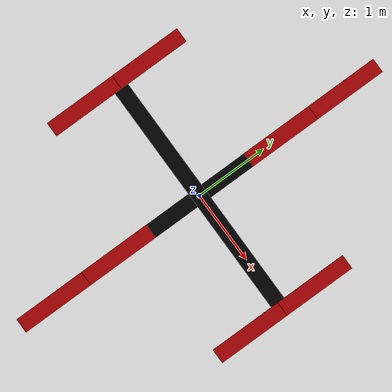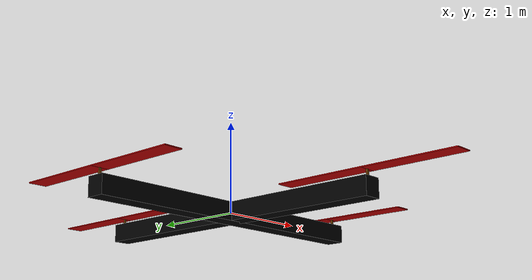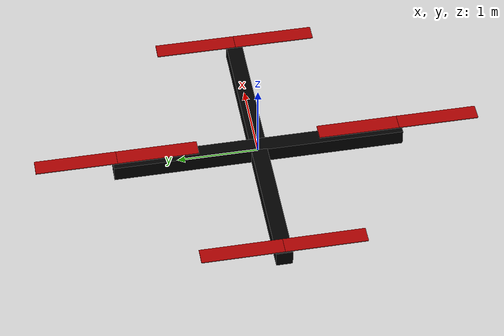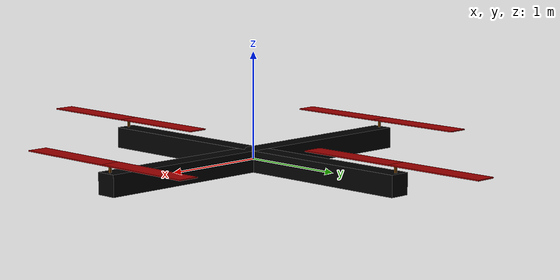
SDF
<?xml version='1.0'?>
<sdf version='1.6'>
  <model name='drone500'>
    <link name='body_1'>
      <pose frame=''>0 0 0 0 -0 0</pose>
      <inertial>
        <pose frame=''>0 0 0 0 -0 0</pose>
        <inertia>
          <ixx>1.8</ixx>
          <ixy>0</ixy>
          <ixz>0</ixz>
          <iyy>10.8</iyy>
          <iyz>0</iyz>
          <izz>10.8</izz>
        </inertia>
        <mass>10</mass>
      </inertial>
      <sensor name='imu_sensor' type='imu'>
        <always_on>1</always_on>
        <update_rate>1000</update_rate>
        <imu>
          <angular_velocity>
            <x>
              <noise type='gaussian'>
                <mean>0</mean>
                <stddev>0.0002</stddev>
                <bias_mean>7.5e-06</bias_mean>
                <bias_stddev>8e-07</bias_stddev>
              </noise>
            </x>
            <y>
              <noise type='gaussian'>
                <mean>0</mean>
                <stddev>0.0002</stddev>
                <bias_mean>7.5e-06</bias_mean>
                <bias_stddev>8e-07</bias_stddev>
              </noise>
            </y>
            <z>
              <noise type='gaussian'>
                <mean>0</mean>
                <stddev>0.0002</stddev>
                <bias_mean>7.5e-06</bias_mean>
                <bias_stddev>8e-07</bias_stddev>
              </noise>
            </z>
          </angular_velocity>
          <linear_acceleration>
            <x>
              <noise type='gaussian'>
                <mean>0</mean>
                <stddev>0.017</stddev>
                <bias_mean>0.1</bias_mean>
                <bias_stddev>0.001</bias_stddev>
              </noise>
            </x>
            <y>
              <noise type='gaussian'>
                <mean>0</mean>
                <stddev>0.017</stddev>
                <bias_mean>0.1</bias_mean>
                <bias_stddev>0.001</bias_stddev>
              </noise>
            </y>
            <z>
              <noise type='gaussian'>
                <mean>0</mean>
                <stddev>0.017</stddev>
                <bias_mean>0.1</bias_mean>
                <bias_stddev>0.001</bias_stddev>
              </noise>
            </z>
          </linear_acceleration>
        </imu>
        <pose frame=''>0 0 0 0 -0 0</pose>
      </sensor>
      <self_collide>0</self_collide>
      <enable_wind>0</enable_wind>
      <kinematic>0</kinematic>
      <gravity>1</gravity>
      <visual name='visual'>
        <geometry>

          <box>
            <size>3.6 0.2 0.2</size>
          </box>
        </geometry>
        <material>
          <ambient>0 0 0 1</ambient>
          <diffuse>0 0 0 1</diffuse>
          <script>
            <name>ModelPreview_12::body_1::visual_MATERIAL_</name>
            <uri>__default__</uri>
          </script>
          <shader type='vertex'>
            <normal_map>__default__</normal_map>
          </shader>
          <specular>0 0 0 1</specular>
          <emissive>0 0 0 1</emissive>
        </material>
        <pose frame=''>0 0 0 0 -0 0</pose>
        <transparency>0</transparency>
        <cast_shadows>1</cast_shadows>
      </visual>
      <collision name='collision'>
        <laser_retro>0</laser_retro>
        <max_contacts>10</max_contacts>
        <pose frame=''>0 0 0 0 -0 0</pose>
        <geometry>
          <box>
            <size>3.6 0.2 0.2</size>
          </box>
        </geometry>
        <surface>
          <friction>
            <ode>
              <mu>0.1</mu>
              <mu2>0.1</mu2>
              <fdir1>0 0 0</fdir1>
              <slip1>0</slip1>
              <slip2>0</slip2>
            </ode>
            <torsional>
              <coefficient>1</coefficient>
              <patch_radius>0</patch_radius>
              <surface_radius>0</surface_radius>
              <use_patch_radius>1</use_patch_radius>
              <ode>
                <slip>0</slip>
              </ode>
            </torsional>
          </friction>
          <bounce>
            <restitution_coefficient>0</restitution_coefficient>
            <threshold>1e+06</threshold>
          </bounce>
          <contact>
            <collide_without_contact>0</collide_without_contact>
            <collide_without_contact_bitmask>1</collide_without_contact_bitmask>
            <collide_bitmask>1</collide_bitmask>
            <ode>
              <soft_cfm>0</soft_cfm>
              <soft_erp>0.2</soft_erp>
              <kp>1e+13</kp>
              <kd>1</kd>
              <max_vel>0.01</max_vel>
              <min_depth>0</min_depth>
            </ode>
            <bullet>
              <split_impulse>1</split_impulse>
              <split_impulse_penetration_threshold>-0.01</split_impulse_penetration_threshold>
              <soft_cfm>0</soft_cfm>
              <soft_erp>0.2</soft_erp>
              <kp>1e+13</kp>
              <kd>1</kd>
            </bullet>
          </contact>
        </surface>
      </collision>
    </link>
    <link name='blade_1'>
      <pose frame=''>-1.75 0 0.18 0 -0 0</pose>
      <inertial>
        <pose frame=''>0 0.25 0 0 -0 0</pose>
        <inertia>
          <ixx>4.65e-05</ixx>
          <ixy>0</ixy>
          <ixz>0</ixz>
          <iyy>6e-07</iyy>
          <iyz>0</iyz>
          <izz>4.7e-05</izz>
        </inertia>
        <mass>0.01</mass>
      </inertial>
      <self_collide>0</self_collide>
      <enable_wind>0</enable_wind>
      <kinematic>0</kinematic>
      <gravity>1</gravity>
      <visual name='visual'>
        <pose frame=''>0 0.5 0 0 -0 0</pose>
        <geometry>
          <box>
            <size>0.2 1 0.01</size>
          </box>
        </geometry>
        <material>
          <ambient>0.667 0 0 1</ambient>
          <diffuse>0.667 0 0 1</diffuse>
          <script>
            <name>ModelPreview_12::blade_1::visual_MATERIAL_</name>
            <uri>__default__</uri>
          </script>
          <shader type='vertex'>
            <normal_map>__default__</normal_map>
          </shader>
          <specular>0.667 0 0 1</specular>
          <emissive>0 0 0 1</emissive>
        </material>
        <transparency>0</transparency>
        <cast_shadows>1</cast_shadows>
      </visual>
      <collision name='collision'>
        <laser_retro>0</laser_retro>
        <max_contacts>10</max_contacts>
        <pose frame=''>0 0.5 0 0 -0 0</pose>
        <geometry>
          <box>
            <size>0.2 1 0.01</size>
          </box>
        </geometry>
        <surface>
          <friction>
            <ode>
              <mu>1</mu>
              <mu2>1</mu2>
              <fdir1>0 0 0</fdir1>
              <slip1>0</slip1>
              <slip2>0</slip2>
            </ode>
            <torsional>
              <coefficient>1</coefficient>
              <patch_radius>0</patch_radius>
              <surface_radius>0</surface_radius>
              <use_patch_radius>1</use_patch_radius>
              <ode>
                <slip>0</slip>
              </ode>
            </torsional>
          </friction>
          <bounce>
            <restitution_coefficient>0</restitution_coefficient>
            <threshold>1e+06</threshold>
          </bounce>
          <contact>
            <collide_without_contact>0</collide_without_contact>
            <collide_without_contact_bitmask>1</collide_without_contact_bitmask>
            <collide_bitmask>1</collide_bitmask>
            <ode>
              <soft_cfm>0</soft_cfm>
              <soft_erp>0.2</soft_erp>
              <kp>1e+13</kp>
              <kd>1</kd>
              <max_vel>0.01</max_vel>
              <min_depth>0</min_depth>
            </ode>
            <bullet>
              <split_impulse>1</split_impulse>
              <split_impulse_penetration_threshold>-0.01</split_impulse_penetration_threshold>
              <soft_cfm>0</soft_cfm>
              <soft_erp>0.2</soft_erp>
              <kp>1e+13</kp>
              <kd>1</kd>
            </bullet>
          </contact>
        </surface>
      </collision>
    </link>
    <link name='blade_2'>
      <pose frame=''>-1.75 0 0.18 0 0 -3.14159</pose>
      <inertial>
        <pose frame=''>0 0.25 0 0 -0 0</pose>
        <inertia>
          <ixx>4.65e-05</ixx>
          <ixy>0</ixy>
          <ixz>0</ixz>
          <iyy>6e-07</iyy>
          <iyz>0</iyz>
          <izz>4.7e-05</izz>
        </inertia>
        <mass>0.01</mass>
      </inertial>
      <self_collide>0</self_collide>
      <enable_wind>0</enable_wind>
      <kinematic>0</kinematic>
      <gravity>1</gravity>
      <visual name='visual'>
        <pose frame=''>0 0.5 0 0 -0 0</pose>
        <geometry>
          <box>
            <size>0.2 1 0.01</size>
          </box>
        </geometry>
        <material>
          <ambient>0.667 0 0 1</ambient>
          <diffuse>0.667 0 0 1</diffuse>
          <script>
            <name>ModelPreview_12::blade_2::visual_MATERIAL_</name>
            <uri>__default__</uri>
          </script>
          <shader type='vertex'>
            <normal_map>__default__</normal_map>
          </shader>
          <specular>0.667 0 0 1</specular>
          <emissive>0 0 0 1</emissive>
        </material>
        <transparency>0</transparency>
        <cast_shadows>1</cast_shadows>
      </visual>
      <collision name='collision'>
        <laser_retro>0</laser_retro>
        <max_contacts>10</max_contacts>
        <pose frame=''>0 0.5 0 0 -0 0</pose>
        <geometry>
          <box>
            <size>0.2 1 0.01</size>
          </box>
        </geometry>
        <surface>
          <friction>
            <ode>
              <mu>1</mu>
              <mu2>1</mu2>
              <fdir1>0 0 0</fdir1>
              <slip1>0</slip1>
              <slip2>0</slip2>
            </ode>
            <torsional>
              <coefficient>1</coefficient>
              <patch_radius>0</patch_radius>
              <surface_radius>0</surface_radius>
              <use_patch_radius>1</use_patch_radius>
              <ode>
                <slip>0</slip>
              </ode>
            </torsional>
          </friction>
          <bounce>
            <restitution_coefficient>0</restitution_coefficient>
            <threshold>1e+06</threshold>
          </bounce>
          <contact>
            <collide_without_contact>0</collide_without_contact>
            <collide_without_contact_bitmask>1</collide_without_contact_bitmask>
            <collide_bitmask>1</collide_bitmask>
            <ode>
              <soft_cfm>0</soft_cfm>
              <soft_erp>0.2</soft_erp>
              <kp>1e+13</kp>
              <kd>1</kd>
              <max_vel>0.01</max_vel>
              <min_depth>0</min_depth>
            </ode>
            <bullet>
              <split_impulse>1</split_impulse>
              <split_impulse_penetration_threshold>-0.01</split_impulse_penetration_threshold>
              <soft_cfm>0</soft_cfm>
              <soft_erp>0.2</soft_erp>
              <kp>1e+13</kp>
              <kd>1</kd>
            </bullet>
          </contact>
        </surface>
      </collision>
    </link>
    <link name='blade_3'>
      <pose frame=''>1.75 0 0.18 0 -0 0</pose>
      <inertial>
        <pose frame=''>0 0.25 0 0 -0 0</pose>
        <inertia>
          <ixx>4.65e-05</ixx>
          <ixy>0</ixy>
          <ixz>0</ixz>
          <iyy>6e-07</iyy>
          <iyz>0</iyz>
          <izz>4.7e-05</izz>
        </inertia>
        <mass>0.01</mass>
      </inertial>
      <self_collide>0</self_collide>
      <enable_wind>0</enable_wind>
      <kinematic>0</kinematic>
      <gravity>1</gravity>
      <visual name='visual'>
        <pose frame=''>0 0.5 0 0 -0 0</pose>
        <geometry>
          <box>
            <size>0.2 1 0.01</size>
          </box>
        </geometry>
        <material>
          <ambient>0.667 0 0 1</ambient>
          <diffuse>0.667 0 0 1</diffuse>
          <script>
            <name>ModelPreview_12::blade_3::visual_MATERIAL_</name>
            <uri>__default__</uri>
          </script>
          <shader type='vertex'>
            <normal_map>__default__</normal_map>
          </shader>
          <specular>0.667 0 0 1</specular>
          <emissive>0 0 0 1</emissive>
        </material>
        <transparency>0</transparency>
        <cast_shadows>1</cast_shadows>
      </visual>
      <collision name='collision'>
        <laser_retro>0</laser_retro>
        <max_contacts>10</max_contacts>
        <pose frame=''>0 0.5 0 0 -0 0</pose>
        <geometry>
          <box>
            <size>0.2 1 0.01</size>
          </box>
        </geometry>
        <surface>
          <friction>
            <ode>
              <mu>1</mu>
              <mu2>1</mu2>
              <fdir1>0 0 0</fdir1>
              <slip1>0</slip1>
              <slip2>0</slip2>
            </ode>
            <torsional>
              <coefficient>1</coefficient>
              <patch_radius>0</patch_radius>
              <surface_radius>0</surface_radius>
              <use_patch_radius>1</use_patch_radius>
              <ode>
                <slip>0</slip>
              </ode>
            </torsional>
          </friction>
          <bounce>
            <restitution_coefficient>0</restitution_coefficient>
            <threshold>1e+06</threshold>
          </bounce>
          <contact>
            <collide_without_contact>0</collide_without_contact>
            <collide_without_contact_bitmask>1</collide_without_contact_bitmask>
            <collide_bitmask>1</collide_bitmask>
            <ode>
              <soft_cfm>0</soft_cfm>
              <soft_erp>0.2</soft_erp>
              <kp>1e+13</kp>
              <kd>1</kd>
              <max_vel>0.01</max_vel>
              <min_depth>0</min_depth>
            </ode>
            <bullet>
              <split_impulse>1</split_impulse>
              <split_impulse_penetration_threshold>-0.01</split_impulse_penetration_threshold>
              <soft_cfm>0</soft_cfm>
              <soft_erp>0.2</soft_erp>
              <kp>1e+13</kp>
              <kd>1</kd>
            </bullet>
          </contact>
        </surface>
      </collision>
    </link>
    <link name='blade_4'>
      <pose frame=''>1.75 0 0.18 0 0 -3.14159</pose>
      <inertial>
        <pose frame=''>0 0.25 0 0 -0 0</pose>
        <inertia>
          <ixx>4.65e-05</ixx>
          <ixy>0</ixy>
          <ixz>0</ixz>
          <iyy>6e-07</iyy>
          <iyz>0</iyz>
          <izz>4.7e-05</izz>
        </inertia>
        <mass>0.01</mass>
      </inertial>
      <self_collide>0</self_collide>
      <enable_wind>0</enable_wind>
      <kinematic>0</kinematic>
      <gravity>1</gravity>
      <visual name='visual'>
        <pose frame=''>0 0.5 0 0 -0 0</pose>
        <geometry>
          <box>
            <size>0.2 1 0.01</size>
          </box>
        </geometry>
        <material>
          <ambient>0.667 0 0 1</ambient>
          <diffuse>0.667 0 0 1</diffuse>
          <script>
            <name>ModelPreview_12::blade_4::visual_MATERIAL_</name>
            <uri>__default__</uri>
          </script>
          <shader type='vertex'>
            <normal_map>__default__</normal_map>
          </shader>
          <specular>0.667 0 0 1</specular>
          <emissive>0 0 0 1</emissive>
        </material>
        <transparency>0</transparency>
        <cast_shadows>1</cast_shadows>
      </visual>
      <collision name='collision'>
        <laser_retro>0</laser_retro>
        <max_contacts>10</max_contacts>
        <pose frame=''>0 0.5 0 0 -0 0</pose>
        <geometry>
          <box>
            <size>0.2 1 0.01</size>
          </box>
        </geometry>
        <surface>
          <friction>
            <ode>
              <mu>1</mu>
              <mu2>1</mu2>
              <fdir1>0 0 0</fdir1>
              <slip1>0</slip1>
              <slip2>0</slip2>
            </ode>
            <torsional>
              <coefficient>1</coefficient>
              <patch_radius>0</patch_radius>
              <surface_radius>0</surface_radius>
              <use_patch_radius>1</use_patch_radius>
              <ode>
                <slip>0</slip>
              </ode>
            </torsional>
          </friction>
          <bounce>
            <restitution_coefficient>0</restitution_coefficient>
            <threshold>1e+06</threshold>
          </bounce>
          <contact>
            <collide_without_contact>0</collide_without_contact>
            <collide_without_contact_bitmask>1</collide_without_contact_bitmask>
            <collide_bitmask>1</collide_bitmask>
            <ode>
              <soft_cfm>0</soft_cfm>
              <soft_erp>0.2</soft_erp>
              <kp>1e+13</kp>
              <kd>1</kd>
              <max_vel>0.01</max_vel>
              <min_depth>0</min_depth>
            </ode>
            <bullet>
              <split_impulse>1</split_impulse>
              <split_impulse_penetration_threshold>-0.01</split_impulse_penetration_threshold>
              <soft_cfm>0</soft_cfm>
              <soft_erp>0.2</soft_erp>
              <kp>1e+13</kp>
              <kd>1</kd>
            </bullet>
          </contact>
        </surface>
      </collision>
    </link>
    <link name='blade_5'>
      <pose frame=''>0 -1.75 0.18 0 -0 0</pose>
      <inertial>
        <pose frame=''>0 0.25 0 0 -0 0</pose>
        <inertia>
          <ixx>4.65e-05</ixx>
          <ixy>0</ixy>
          <ixz>0</ixz>
          <iyy>6e-07</iyy>
          <iyz>0</iyz>
          <izz>4.7e-05</izz>
        </inertia>
        <mass>0.01</mass>
      </inertial>
      <self_collide>0</self_collide>
      <enable_wind>0</enable_wind>
      <kinematic>0</kinematic>
      <gravity>1</gravity>
      <visual name='visual'>
        <pose frame=''>0 0.5 0 0 -0 0</pose>
        <geometry>
          <box>
            <size>0.2 1 0.01</size>
          </box>
        </geometry>
        <material>
          <ambient>0.667 0 0 1</ambient>
          <diffuse>0.667 0 0 1</diffuse>
          <script>
            <name>ModelPreview_12::blade_5::visual_MATERIAL_</name>
            <uri>__default__</uri>
          </script>
          <shader type='vertex'>
            <normal_map>__default__</normal_map>
          </shader>
          <specular>0.667 0 0 1</specular>
          <emissive>0.667 0 0 1</emissive>
        </material>
        <transparency>0</transparency>
        <cast_shadows>1</cast_shadows>
      </visual>
      <collision name='collision'>
        <laser_retro>0</laser_retro>
        <max_contacts>10</max_contacts>
        <pose frame=''>0 0.5 0 0 -0 0</pose>
        <geometry>
          <box>
            <size>0.2 1 0.01</size>
          </box>
        </geometry>
        <surface>
          <friction>
            <ode>
              <mu>1</mu>
              <mu2>1</mu2>
              <fdir1>0 0 0</fdir1>
              <slip1>0</slip1>
              <slip2>0</slip2>
            </ode>
            <torsional>
              <coefficient>1</coefficient>
              <patch_radius>0</patch_radius>
              <surface_radius>0</surface_radius>
              <use_patch_radius>1</use_patch_radius>
              <ode>
                <slip>0</slip>
              </ode>
            </torsional>
          </friction>
          <bounce>
            <restitution_coefficient>0</restitution_coefficient>
            <threshold>1e+06</threshold>
          </bounce>
          <contact>
            <collide_without_contact>0</collide_without_contact>
            <collide_without_contact_bitmask>1</collide_without_contact_bitmask>
            <collide_bitmask>1</collide_bitmask>
            <ode>
              <soft_cfm>0</soft_cfm>
              <soft_erp>0.2</soft_erp>
              <kp>1e+13</kp>
              <kd>1</kd>
              <max_vel>0.01</max_vel>
              <min_depth>0</min_depth>
            </ode>
            <bullet>
              <split_impulse>1</split_impulse>
              <split_impulse_penetration_threshold>-0.01</split_impulse_penetration_threshold>
              <soft_cfm>0</soft_cfm>
              <soft_erp>0.2</soft_erp>
              <kp>1e+13</kp>
              <kd>1</kd>
            </bullet>
          </contact>
        </surface>
      </collision>
    </link>
    <link name='blade_6'>
      <pose frame=''>0 -1.75 0.18 0 0 -3.14159</pose>
      <inertial>
        <pose frame=''>0 0.25 0 0 -0 0</pose>
        <inertia>
          <ixx>4.65e-05</ixx>
          <ixy>0</ixy>
          <ixz>0</ixz>
          <iyy>6e-07</iyy>
          <iyz>0</iyz>
          <izz>4.7e-05</izz>
        </inertia>
        <mass>0.01</mass>
      </inertial>
      <self_collide>0</self_collide>
      <enable_wind>0</enable_wind>
      <kinematic>0</kinematic>
      <gravity>1</gravity>
      <visual name='visual'>
        <pose frame=''>0 0.5 0 0 -0 0</pose>
        <geometry>
          <box>
            <size>0.2 1 0.01</size>
          </box>
        </geometry>
        <material>
          <ambient>0.667 0 0 1</ambient>
          <diffuse>0.667 0 0 1</diffuse>
          <script>
            <name>ModelPreview_12::blade_6::visual_MATERIAL_</name>
            <uri>__default__</uri>
          </script>
          <shader type='vertex'>
            <normal_map>__default__</normal_map>
          </shader>
          <specular>0.667 0 0 1</specular>
          <emissive>0.667 0 0 1</emissive>
        </material>
        <transparency>0</transparency>
        <cast_shadows>1</cast_shadows>
      </visual>
      <collision name='collision'>
        <laser_retro>0</laser_retro>
        <max_contacts>10</max_contacts>
        <pose frame=''>0 0.5 0 0 -0 0</pose>
        <geometry>
          <box>
            <size>0.2 1 0.01</size>
          </box>
        </geometry>
        <surface>
          <friction>
            <ode>
              <mu>1</mu>
              <mu2>1</mu2>
              <fdir1>0 0 0</fdir1>
              <slip1>0</slip1>
              <slip2>0</slip2>
            </ode>
            <torsional>
              <coefficient>1</coefficient>
              <patch_radius>0</patch_radius>
              <surface_radius>0</surface_radius>
              <use_patch_radius>1</use_patch_radius>
              <ode>
                <slip>0</slip>
              </ode>
            </torsional>
          </friction>
          <bounce>
            <restitution_coefficient>0</restitution_coefficient>
            <threshold>1e+06</threshold>
          </bounce>
          <contact>
            <collide_without_contact>0</collide_without_contact>
            <collide_without_contact_bitmask>1</collide_without_contact_bitmask>
            <collide_bitmask>1</collide_bitmask>
            <ode>
              <soft_cfm>0</soft_cfm>
              <soft_erp>0.2</soft_erp>
              <kp>1e+13</kp>
              <kd>1</kd>
              <max_vel>0.01</max_vel>
              <min_depth>0</min_depth>
            </ode>
            <bullet>
              <split_impulse>1</split_impulse>
              <split_impulse_penetration_threshold>-0.01</split_impulse_penetration_threshold>
              <soft_cfm>0</soft_cfm>
              <soft_erp>0.2</soft_erp>
              <kp>1e+13</kp>
              <kd>1</kd>
            </bullet>
          </contact>
        </surface>
      </collision>
    </link>
    <link name='blade_7'>
      <pose frame=''>0 1.75 0.18 0 -0 0</pose>
      <inertial>
        <pose frame=''>0 0.25 0 0 -0 0</pose>
        <inertia>
          <ixx>4.65e-05</ixx>
          <ixy>0</ixy>
          <ixz>0</ixz>
          <iyy>6e-07</iyy>
          <iyz>0</iyz>
          <izz>4.7e-05</izz>
        </inertia>
        <mass>0.01</mass>
      </inertial>
      <self_collide>0</self_collide>
      <enable_wind>0</enable_wind>
      <kinematic>0</kinematic>
      <gravity>1</gravity>
      <visual name='visual'>
        <pose frame=''>0 0.5 0 0 -0 0</pose>
        <geometry>
          <box>
            <size>0.2 1 0.01</size>
          </box>
        </geometry>
        <material>
          <ambient>0.667 0 0 1</ambient>
          <diffuse>0.667 0 0 1</diffuse>
          <script>
            <name>ModelPreview_12::blade_7::visual_MATERIAL_</name>
            <uri>__default__</uri>
          </script>
          <shader type='vertex'>
            <normal_map>__default__</normal_map>
          </shader>
          <specular>0.667 0 0 1</specular>
          <emissive>0.667 0 0 1</emissive>
        </material>
        <transparency>0</transparency>
        <cast_shadows>1</cast_shadows>
      </visual>
      <collision name='collision'>
        <laser_retro>0</laser_retro>
        <max_contacts>10</max_contacts>
        <pose frame=''>0 0.5 0 0 -0 0</pose>
        <geometry>
          <box>
            <size>0.2 1 0.01</size>
          </box>
        </geometry>
        <surface>
          <friction>
            <ode>
              <mu>1</mu>
              <mu2>1</mu2>
              <fdir1>0 0 0</fdir1>
              <slip1>0</slip1>
              <slip2>0</slip2>
            </ode>
            <torsional>
              <coefficient>1</coefficient>
              <patch_radius>0</patch_radius>
              <surface_radius>0</surface_radius>
              <use_patch_radius>1</use_patch_radius>
              <ode>
                <slip>0</slip>
              </ode>
            </torsional>
          </friction>
          <bounce>
            <restitution_coefficient>0</restitution_coefficient>
            <threshold>1e+06</threshold>
          </bounce>
          <contact>
            <collide_without_contact>0</collide_without_contact>
            <collide_without_contact_bitmask>1</collide_without_contact_bitmask>
            <collide_bitmask>1</collide_bitmask>
            <ode>
              <soft_cfm>0</soft_cfm>
              <soft_erp>0.2</soft_erp>
              <kp>1e+13</kp>
              <kd>1</kd>
              <max_vel>0.01</max_vel>
              <min_depth>0</min_depth>
            </ode>
            <bullet>
              <split_impulse>1</split_impulse>
              <split_impulse_penetration_threshold>-0.01</split_impulse_penetration_threshold>
              <soft_cfm>0</soft_cfm>
              <soft_erp>0.2</soft_erp>
              <kp>1e+13</kp>
              <kd>1</kd>
            </bullet>
          </contact>
        </surface>
      </collision>
    </link>
    <link name='blade_8'>
      <pose frame=''>0 1.75 0.18 0 0 -3.14159</pose>
      <inertial>
        <pose frame=''>0 0.25 0 0 -0 0</pose>
        <inertia>
          <ixx>4.65e-05</ixx>
          <ixy>0</ixy>
          <ixz>0</ixz>
          <iyy>6e-07</iyy>
          <iyz>0</iyz>
          <izz>4.7e-05</izz>
        </inertia>
        <mass>0.01</mass>
      </inertial>
      <self_collide>0</self_collide>
      <enable_wind>0</enable_wind>
      <kinematic>0</kinematic>
      <gravity>1</gravity>
      <visual name='visual'>
        <pose frame=''>0 0.5 0 0 -0 0</pose>
        <geometry>
          <box>
            <size>0.2 1 0.01</size>
          </box>
        </geometry>
        <material>
          <ambient>0.667 0 0 1</ambient>
          <diffuse>0.667 0 0 1</diffuse>
          <script>
            <name>ModelPreview_12::blade_8::visual_MATERIAL_</name>
            <uri>__default__</uri>
          </script>
          <shader type='vertex'>
            <normal_map>__default__</normal_map>
          </shader>
          <specular>0.667 0 0 1</specular>
          <emissive>0.667 0 0 1</emissive>
        </material>
        <transparency>0</transparency>
        <cast_shadows>1</cast_shadows>
      </visual>
      <collision name='collision'>
        <laser_retro>0</laser_retro>
        <max_contacts>10</max_contacts>
        <pose frame=''>0 0.5 0 0 -0 0</pose>
        <geometry>
          <box>
            <size>0.2 1 0.01</size>
          </box>
        </geometry>
        <surface>
          <friction>
            <ode>
              <mu>1</mu>
              <mu2>1</mu2>
              <fdir1>0 0 0</fdir1>
              <slip1>0</slip1>
              <slip2>0</slip2>
            </ode>
            <torsional>
              <coefficient>1</coefficient>
              <patch_radius>0</patch_radius>
              <surface_radius>0</surface_radius>
              <use_patch_radius>1</use_patch_radius>
              <ode>
                <slip>0</slip>
              </ode>
            </torsional>
          </friction>
          <bounce>
            <restitution_coefficient>0</restitution_coefficient>
            <threshold>1e+06</threshold>
          </bounce>
          <contact>
            <collide_without_contact>0</collide_without_contact>
            <collide_without_contact_bitmask>1</collide_without_contact_bitmask>
            <collide_bitmask>1</collide_bitmask>
            <ode>
              <soft_cfm>0</soft_cfm>
              <soft_erp>0.2</soft_erp>
              <kp>1e+13</kp>
              <kd>1</kd>
              <max_vel>0.01</max_vel>
              <min_depth>0</min_depth>
            </ode>
            <bullet>
              <split_impulse>1</split_impulse>
              <split_impulse_penetration_threshold>-0.01</split_impulse_penetration_threshold>
              <soft_cfm>0</soft_cfm>
              <soft_erp>0.2</soft_erp>
              <kp>1e+13</kp>
              <kd>1</kd>
            </bullet>
          </contact>
        </surface>
      </collision>
    </link>
    <link name='body_2'>
      <pose frame=''>0 0 0 0 -0 0</pose>
      <inertial>
        <pose frame=''>0 0 0 0 -0 0</pose>
        <inertia>
          <ixx>10.8</ixx>
          <ixy>0</ixy>
          <ixz>0</ixz>
          <iyy>1.8</iyy>
          <iyz>0</iyz>
          <izz>10.8</izz>
        </inertia>
        <mass>10</mass>
      </inertial>
      <self_collide>0</self_collide>
      <enable_wind>0</enable_wind>
      <kinematic>0</kinematic>
      <gravity>1</gravity>
      <visual name='visual'>
        <geometry>
          <box>
            <size>0.2 3.6 0.2</size>
          </box>
        </geometry>
        <material>
          <ambient>0 0 0 1</ambient>
          <diffuse>0 0 0 1</diffuse>
          <script>
            <name>ModelPreview_12::body_2::visual_MATERIAL_</name>
            <uri>__default__</uri>
          </script>
          <shader type='vertex'>
            <normal_map>__default__</normal_map>
          </shader>
          <specular>0 0 0 1</specular>
          <emissive>0 0 0 1</emissive>
        </material>
        <pose frame=''>0 0 0 0 -0 0</pose>
        <transparency>0</transparency>
        <cast_shadows>1</cast_shadows>
      </visual>
      <collision name='collision'>
        <laser_retro>0</laser_retro>
        <max_contacts>10</max_contacts>
        <pose frame=''>0 0 0 0 -0 0</pose>
        <geometry>
          <box>
            <size>0.2 3.6 0.2</size>
          </box>
        </geometry>
        <surface>
          <friction>
            <ode>
              <mu>0.1</mu>
              <mu2>0.1</mu2>
              <fdir1>0 0 0</fdir1>
              <slip1>0</slip1>
              <slip2>0</slip2>
            </ode>
            <torsional>
              <coefficient>1</coefficient>
              <patch_radius>0</patch_radius>
              <surface_radius>0</surface_radius>
              <use_patch_radius>1</use_patch_radius>
              <ode>
                <slip>0</slip>
              </ode>
            </torsional>
          </friction>
          <bounce>
            <restitution_coefficient>0</restitution_coefficient>
            <threshold>1e+06</threshold>
          </bounce>
          <contact>
            <collide_without_contact>0</collide_without_contact>
            <collide_without_contact_bitmask>1</collide_without_contact_bitmask>
            <collide_bitmask>1</collide_bitmask>
            <ode>
              <soft_cfm>0</soft_cfm>
              <soft_erp>0.2</soft_erp>
              <kp>1e+13</kp>
              <kd>1</kd>
              <max_vel>0.01</max_vel>
              <min_depth>0</min_depth>
            </ode>
            <bullet>
              <split_impulse>1</split_impulse>
              <split_impulse_penetration_threshold>-0.01</split_impulse_penetration_threshold>
              <soft_cfm>0</soft_cfm>
              <soft_erp>0.2</soft_erp>
              <kp>1e+13</kp>
              <kd>1</kd>
            </bullet>
          </contact>
        </surface>
      </collision>
    </link>
    <link name='rod_1'>
      <pose frame=''>-1.75 0 0.14 0 -0 0</pose>
      <inertial>
        <pose frame=''>0 0 0 0 -0 0</pose>
        <inertia>
          <ixx>0.012</ixx>
          <ixy>0</ixy>
          <ixz>0</ixz>
          <iyy>0.012</iyy>
          <iyz>0</iyz>
          <izz>0.0012</izz>
        </inertia>
        <mass>1</mass>
      </inertial>
      <self_collide>0</self_collide>
      <enable_wind>0</enable_wind>
      <kinematic>0</kinematic>
      <gravity>1</gravity>
      <visual name='visual'>
        <geometry>
          <box>
            <size>0.02 0.02 0.08</size>
          </box>
        </geometry>
        <material>
          <ambient>0.3 0.3 0.3 1</ambient>
          <diffuse>0.421 0.225 0 1</diffuse>
          <script>
            <name>ModelPreview_12::rod_1::visual_MATERIAL_</name>
            <uri>__default__</uri>
          </script>
          <shader type='vertex'>
            <normal_map>__default__</normal_map>
          </shader>
          <specular>0 0 0 1</specular>
          <emissive>0 0 0 1</emissive>
        </material>
        <pose frame=''>0 0 0 0 -0 0</pose>
        <transparency>0</transparency>
        <cast_shadows>1</cast_shadows>
      </visual>
      <collision name='collision'>
        <laser_retro>0</laser_retro>
        <max_contacts>10</max_contacts>
        <pose frame=''>0 0 0 0 -0 0</pose>
        <geometry>
          <box>
            <size>0.02 0.02 0.08</size>
          </box>
        </geometry>
        <surface>
          <friction>
            <ode>
              <mu>1</mu>
              <mu2>1</mu2>
              <fdir1>0 0 0</fdir1>
              <slip1>0</slip1>
              <slip2>0</slip2>
            </ode>
            <torsional>
              <coefficient>1</coefficient>
              <patch_radius>0</patch_radius>
              <surface_radius>0</surface_radius>
              <use_patch_radius>1</use_patch_radius>
              <ode>
                <slip>0</slip>
              </ode>
            </torsional>
          </friction>
          <bounce>
            <restitution_coefficient>0</restitution_coefficient>
            <threshold>1e+06</threshold>
          </bounce>
          <contact>
            <collide_without_contact>0</collide_without_contact>
            <collide_without_contact_bitmask>1</collide_without_contact_bitmask>
            <collide_bitmask>1</collide_bitmask>
            <ode>
              <soft_cfm>0</soft_cfm>
              <soft_erp>0.2</soft_erp>
              <kp>1e+13</kp>
              <kd>1</kd>
              <max_vel>0.01</max_vel>
              <min_depth>0</min_depth>
            </ode>
            <bullet>
              <split_impulse>1</split_impulse>
              <split_impulse_penetration_threshold>-0.01</split_impulse_penetration_threshold>
              <soft_cfm>0</soft_cfm>
              <soft_erp>0.2</soft_erp>
              <kp>1e+13</kp>
              <kd>1</kd>
            </bullet>
          </contact>
        </surface>
      </collision>
    </link>
    <link name='rod_2'>
      <pose frame=''>1.75 0 0.14 0 -0 0</pose>
      <inertial>
        <pose frame=''>0 0 0 0 -0 0</pose>
        <inertia>
          <ixx>0.012</ixx>
          <ixy>0</ixy>
          <ixz>0</ixz>
          <iyy>0.012</iyy>
          <iyz>0</iyz>
          <izz>0.0012</izz>
        </inertia>
        <mass>1</mass>
      </inertial>
      <self_collide>0</self_collide>
      <enable_wind>0</enable_wind>
      <kinematic>0</kinematic>
      <visual name='visual'>
        <geometry>
          <box>
            <size>0.02 0.02 0.08</size>
          </box>
        </geometry>
        <material>
          <ambient>0.3 0.3 0.3 1</ambient>
          <diffuse>0.421 0.225 0 1</diffuse>
          <script>
            <name>ModelPreview_12::rod_2::visual_MATERIAL_</name>
            <uri>__default__</uri>
          </script>
        </material>
        <pose frame=''>0 0 0 0 -0 0</pose>
        <transparency>0</transparency>
        <cast_shadows>1</cast_shadows>
      </visual>
      <collision name='collision'>
        <laser_retro>0</laser_retro>
        <max_contacts>10</max_contacts>
        <pose frame=''>0 0 0 0 -0 0</pose>
        <geometry>
          <box>
            <size>0.02 0.02 0.08</size>
          </box>
        </geometry>
        <surface>
          <friction>
            <ode>
              <mu>1</mu>
              <mu2>1</mu2>
              <fdir1>0 0 0</fdir1>
              <slip1>0</slip1>
              <slip2>0</slip2>
            </ode>
            <torsional>
              <coefficient>1</coefficient>
              <patch_radius>0</patch_radius>
              <surface_radius>0</surface_radius>
              <use_patch_radius>1</use_patch_radius>
              <ode>
                <slip>0</slip>
              </ode>
            </torsional>
          </friction>
          <bounce>
            <restitution_coefficient>0</restitution_coefficient>
            <threshold>1e+06</threshold>
          </bounce>
          <contact>
            <collide_without_contact>0</collide_without_contact>
            <collide_without_contact_bitmask>1</collide_without_contact_bitmask>
            <collide_bitmask>1</collide_bitmask>
            <ode>
              <soft_cfm>0</soft_cfm>
              <soft_erp>0.2</soft_erp>
              <kp>1e+13</kp>
              <kd>1</kd>
              <max_vel>0.01</max_vel>
              <min_depth>0</min_depth>
            </ode>
            <bullet>
              <split_impulse>1</split_impulse>
              <split_impulse_penetration_threshold>-0.01</split_impulse_penetration_threshold>
              <soft_cfm>0</soft_cfm>
              <soft_erp>0.2</soft_erp>
              <kp>1e+13</kp>
              <kd>1</kd>
            </bullet>
          </contact>
        </surface>
      </collision>
    </link>
    <link name='rod_3'>
      <pose frame=''>0 -1.75 0.14 0 -0 0</pose>
      <inertial>
        <pose frame=''>0 0 0 0 -0 0</pose>
        <inertia>
          <ixx>0.012</ixx>
          <ixy>0</ixy>
          <ixz>0</ixz>
          <iyy>0.012</iyy>
          <iyz>0</iyz>
          <izz>0.0012</izz>
        </inertia>
        <mass>1</mass>
      </inertial>
      <self_collide>0</self_collide>
      <enable_wind>0</enable_wind>
      <kinematic>0</kinematic>
      <visual name='visual'>
        <geometry>
          <box>
            <size>0.02 0.02 0.08</size>
          </box>
        </geometry>
        <material>
          <ambient>0.3 0.3 0.3 1</ambient>
          <diffuse>0.421 0.225 0 1</diffuse>
          <script>
            <name>ModelPreview_12::rod_3::visual_MATERIAL_</name>
            <uri>__default__</uri>
          </script>
        </material>
        <pose frame=''>0 0 0 0 -0 0</pose>
        <transparency>0</transparency>
        <cast_shadows>1</cast_shadows>
      </visual>
      <collision name='collision'>
        <laser_retro>0</laser_retro>
        <max_contacts>10</max_contacts>
        <pose frame=''>0 0 0 0 -0 0</pose>
        <geometry>
          <box>
            <size>0.02 0.02 0.08</size>
          </box>
        </geometry>
        <surface>
          <friction>
            <ode>
              <mu>1</mu>
              <mu2>1</mu2>
              <fdir1>0 0 0</fdir1>
              <slip1>0</slip1>
              <slip2>0</slip2>
            </ode>
            <torsional>
              <coefficient>1</coefficient>
              <patch_radius>0</patch_radius>
              <surface_radius>0</surface_radius>
              <use_patch_radius>1</use_patch_radius>
              <ode>
                <slip>0</slip>
              </ode>
            </torsional>
          </friction>
          <bounce>
            <restitution_coefficient>0</restitution_coefficient>
            <threshold>1e+06</threshold>
          </bounce>
          <contact>
            <collide_without_contact>0</collide_without_contact>
            <collide_without_contact_bitmask>1</collide_without_contact_bitmask>
            <collide_bitmask>1</collide_bitmask>
            <ode>
              <soft_cfm>0</soft_cfm>
              <soft_erp>0.2</soft_erp>
              <kp>1e+13</kp>
              <kd>1</kd>
              <max_vel>0.01</max_vel>
              <min_depth>0</min_depth>
            </ode>
            <bullet>
              <split_impulse>1</split_impulse>
              <split_impulse_penetration_threshold>-0.01</split_impulse_penetration_threshold>
              <soft_cfm>0</soft_cfm>
              <soft_erp>0.2</soft_erp>
              <kp>1e+13</kp>
              <kd>1</kd>
            </bullet>
          </contact>
        </surface>
      </collision>
    </link>
    <link name='rod_4'>
      <pose frame=''>0 1.75 0.14 0 -0 0</pose>
      <inertial>
        <pose frame=''>0 0 0 0 -0 0</pose>
        <inertia>
          <ixx>0.012</ixx>
          <ixy>0</ixy>
          <ixz>0</ixz>
          <iyy>0.012</iyy>
          <iyz>0</iyz>
          <izz>0.0012</izz>
        </inertia>
        <mass>1</mass>
      </inertial>
      <self_collide>0</self_collide>
      <enable_wind>0</enable_wind>
      <kinematic>0</kinematic>
      <visual name='visual'>
        <geometry>
          <box>
            <size>0.02 0.02 0.08</size>
          </box>
        </geometry>
        <material>
          <ambient>0.3 0.3 0.3 1</ambient>
          <diffuse>0.421 0.225 0 1</diffuse>
          <script>
            <name>ModelPreview_12::rod_4::visual_MATERIAL_</name>
            <uri>__default__</uri>
          </script>
        </material>
        <pose frame=''>0 0 0 0 -0 0</pose>
        <transparency>0</transparency>
        <cast_shadows>1</cast_shadows>
      </visual>
      <collision name='collision'>
        <laser_retro>0</laser_retro>
        <max_contacts>10</max_contacts>
        <pose frame=''>0 0 0 0 -0 0</pose>
        <geometry>
          <box>
            <size>0.02 0.02 0.08</size>
          </box>
        </geometry>
        <surface>
          <friction>
            <ode>
              <mu>1</mu>
              <mu2>1</mu2>
              <fdir1>0 0 0</fdir1>
              <slip1>0</slip1>
              <slip2>0</slip2>
            </ode>
            <torsional>
              <coefficient>1</coefficient>
              <patch_radius>0</patch_radius>
              <surface_radius>0</surface_radius>
              <use_patch_radius>1</use_patch_radius>
              <ode>
                <slip>0</slip>
              </ode>
            </torsional>
          </friction>
          <bounce>
            <restitution_coefficient>0</restitution_coefficient>
            <threshold>1e+06</threshold>
          </bounce>
          <contact>
            <collide_without_contact>0</collide_without_contact>
            <collide_without_contact_bitmask>1</collide_without_contact_bitmask>
            <collide_bitmask>1</collide_bitmask>
            <ode>
              <soft_cfm>0</soft_cfm>
              <soft_erp>0.2</soft_erp>
              <kp>1e+13</kp>
              <kd>1</kd>
              <max_vel>0.01</max_vel>
              <min_depth>0</min_depth>
            </ode>
            <bullet>
              <split_impulse>1</split_impulse>
              <split_impulse_penetration_threshold>-0.01</split_impulse_penetration_threshold>
              <soft_cfm>0</soft_cfm>
              <soft_erp>0.2</soft_erp>
              <kp>1e+13</kp>
              <kd>1</kd>
            </bullet>
          </contact>
        </surface>
      </collision>
    </link>
    <joint name='b1_joint' type='revolute'>
      <parent>rod_1</parent>
      <child>blade_1</child>
      <pose frame=''>0 0 0 0 -0 0</pose>
      <axis>
        <xyz>1 0 0</xyz>
        <use_parent_model_frame>0</use_parent_model_frame>
        <limit>
          <lower>0</lower>
          <upper>0</upper>
          <effort>-1</effort>
          <velocity>-1</velocity>
        </limit>
        <dynamics>
          <spring_reference>0</spring_reference>
          <spring_stiffness>0</spring_stiffness>
          <damping>1</damping>
          <friction>0</friction>
        </dynamics>
      </axis>
      <physics>
        <ode>
          <limit>
            <cfm>0</cfm>
            <erp>0.2</erp>
          </limit>
          <suspension>
            <cfm>0</cfm>
            <erp>0.2</erp>
          </suspension>
        </ode>
      </physics>
    </joint>
    <joint name='b2_joint' type='revolute'>
      <parent>rod_1</parent>
      <child>blade_2</child>
      <pose frame=''>0 0 0 0 -0 0</pose>
      <axis>
        <xyz>1 0 0</xyz>
        <use_parent_model_frame>0</use_parent_model_frame>
        <limit>
          <lower>0</lower>
          <upper>0</upper>
          <effort>-1</effort>
          <velocity>-1</velocity>
        </limit>
        <dynamics>
          <spring_reference>0</spring_reference>
          <spring_stiffness>0</spring_stiffness>
          <damping>1</damping>
          <friction>0</friction>
        </dynamics>
      </axis>
      <physics>
        <ode>
          <limit>
            <cfm>0</cfm>
            <erp>0.2</erp>
          </limit>
          <suspension>
            <cfm>0</cfm>
            <erp>0.2</erp>
          </suspension>
        </ode>
      </physics>
    </joint>
    <joint name='b3_joint' type='revolute'>
      <parent>rod_2</parent>
      <child>blade_3</child>
      <pose frame=''>0 0 0 0 -0 0</pose>
      <axis>
        <xyz>1 0 0</xyz>
        <use_parent_model_frame>0</use_parent_model_frame>
        <limit>
          <lower>0</lower>
          <upper>0</upper>
          <effort>-1</effort>
          <velocity>-1</velocity>
        </limit>
        <dynamics>
          <spring_reference>0</spring_reference>
          <spring_stiffness>0</spring_stiffness>
          <damping>1</damping>
          <friction>0</friction>
        </dynamics>
      </axis>
      <physics>
        <ode>
          <limit>
            <cfm>0</cfm>
            <erp>0.2</erp>
          </limit>
          <suspension>
            <cfm>0</cfm>
            <erp>0.2</erp>
          </suspension>
        </ode>
      </physics>
    </joint>
    <joint name='b4_joint' type='revolute'>
      <parent>rod_2</parent>
      <child>blade_4</child>
      <pose frame=''>0 0 0 0 -0 0</pose>
      <axis>
        <xyz>1 0 0</xyz>
        <use_parent_model_frame>0</use_parent_model_frame>
        <limit>
          <lower>0</lower>
          <upper>0</upper>
          <effort>-1</effort>
          <velocity>-1</velocity>
        </limit>
        <dynamics>
          <spring_reference>0</spring_reference>
          <spring_stiffness>0</spring_stiffness>
          <damping>1</damping>
          <friction>0</friction>
        </dynamics>
      </axis>
      <physics>
        <ode>
          <limit>
            <cfm>0</cfm>
            <erp>0.2</erp>
          </limit>
          <suspension>
            <cfm>0</cfm>
            <erp>0.2</erp>
          </suspension>
        </ode>
      </physics>
    </joint>
    <joint name='b5_joint' type='revolute'>
      <parent>rod_3</parent>
      <child>blade_5</child>
      <pose frame=''>0 0 0 0 -0 0</pose>
      <axis>
        <xyz>1 0 0</xyz>
        <use_parent_model_frame>0</use_parent_model_frame>
        <limit>
          <lower>0</lower>
          <upper>0</upper>
          <effort>-1</effort>
          <velocity>-1</velocity>
        </limit>
        <dynamics>
          <spring_reference>0</spring_reference>
          <spring_stiffness>0</spring_stiffness>
          <damping>1</damping>
          <friction>0</friction>
        </dynamics>
      </axis>
      <physics>
        <ode>
          <limit>
            <cfm>0</cfm>
            <erp>0.2</erp>
          </limit>
          <suspension>
            <cfm>0</cfm>
            <erp>0.2</erp>
          </suspension>
        </ode>
      </physics>
    </joint>
    <joint name='b6_joint' type='revolute'>
      <parent>rod_3</parent>
      <child>blade_6</child>
      <pose frame=''>0 0 0 0 -0 0</pose>
      <axis>
        <xyz>1 0 0</xyz>
        <use_parent_model_frame>0</use_parent_model_frame>
        <limit>
          <lower>0</lower>
          <upper>0</upper>
          <effort>-1</effort>
          <velocity>-1</velocity>
        </limit>
        <dynamics>
          <spring_reference>0</spring_reference>
          <spring_stiffness>0</spring_stiffness>
          <damping>1</damping>
          <friction>0</friction>
        </dynamics>
      </axis>
      <physics>
        <ode>
          <limit>
            <cfm>0</cfm>
            <erp>0.2</erp>
          </limit>
          <suspension>
            <cfm>0</cfm>
            <erp>0.2</erp>
          </suspension>
        </ode>
      </physics>
    </joint>
    <joint name='b7_joint' type='revolute'>
      <parent>rod_4</parent>
      <child>blade_7</child>
      <pose frame=''>0 0 0 0 -0 0</pose>
      <axis>
        <xyz>1 0 0</xyz>
        <use_parent_model_frame>0</use_parent_model_frame>
        <limit>
          <lower>0</lower>
          <upper>0</upper>
          <effort>-1</effort>
          <velocity>-1</velocity>
        </limit>
        <dynamics>
          <spring_reference>0</spring_reference>
          <spring_stiffness>0</spring_stiffness>
          <damping>1</damping>
          <friction>0</friction>
        </dynamics>
      </axis>
      <physics>
        <ode>
          <limit>
            <cfm>0</cfm>
            <erp>0.2</erp>
          </limit>
          <suspension>
            <cfm>0</cfm>
            <erp>0.2</erp>
          </suspension>
        </ode>
      </physics>
    </joint>
    <joint name='b8_joint' type='revolute'>
      <parent>rod_4</parent>
      <child>blade_8</child>
      <pose frame=''>0 0 0 0 -0 0</pose>
      <axis>
        <xyz>1 0 0</xyz>
        <use_parent_model_frame>0</use_parent_model_frame>
        <limit>
          <lower>0</lower>
          <upper>0</upper>
          <effort>-1</effort>
          <velocity>-1</velocity>
        </limit>
        <dynamics>
          <spring_reference>0</spring_reference>
          <spring_stiffness>0</spring_stiffness>
          <damping>1</damping>
          <friction>0</friction>
        </dynamics>
      </axis>
      <physics>
        <ode>
          <limit>
            <cfm>0</cfm>
            <erp>0.2</erp>
          </limit>
          <suspension>
            <cfm>0</cfm>
            <erp>0.2</erp>
          </suspension>
        </ode>
      </physics>
    </joint>
    <joint name='body_joint' type='revolute'>
      <parent>body_1</parent>
      <child>body_2</child>
      <pose frame=''>0 0 0 0 -0 0</pose>
      <axis>
        <xyz>0 0 1</xyz>
        <use_parent_model_frame>0</use_parent_model_frame>
        <limit>
          <lower>0</lower>
          <upper>0</upper>
          <effort>-1</effort>
          <velocity>-1</velocity>
        </limit>
        <dynamics>
          <spring_reference>0</spring_reference>
          <spring_stiffness>0</spring_stiffness>
          <damping>0.0001</damping>
          <friction>0</friction>
        </dynamics>
      </axis>
      <physics>
        <ode>
          <limit>
            <cfm>0</cfm>
            <erp>0.2</erp>
          </limit>
          <suspension>
            <cfm>0</cfm>
            <erp>0.2</erp>
          </suspension>
        </ode>
      </physics>
    </joint>
    <joint name='r1_joint' type='revolute'>
      <parent>body_1</parent>
      <child>rod_1</child>
      <pose frame=''>0 0 0 0 -0 0</pose>
      <axis>
        <xyz>0 0 -1</xyz>
        <use_parent_model_frame>0</use_parent_model_frame>
        <limit>
          <lower>-1e+16</lower>
          <upper>1e+16</upper>
          <effort>-1</effort>
          <velocity>-1</velocity>
        </limit>
        <dynamics>
          <spring_reference>0</spring_reference>
          <spring_stiffness>0</spring_stiffness>
          <damping>0.0001</damping>
          <friction>0</friction>
        </dynamics>
      </axis>
      <physics>
        <ode>
          <limit>
            <cfm>0</cfm>
            <erp>0.2</erp>
          </limit>
          <suspension>
            <cfm>0</cfm>
            <erp>0.2</erp>
          </suspension>
        </ode>
      </physics>
    </joint>
    <joint name='r2_joint' type='revolute'>
      <parent>body_1</parent>
      <child>rod_2</child>
      <pose frame=''>0 0 0 0 -0 0</pose>
      <axis>
        <xyz>0 0 -1</xyz>
        <use_parent_model_frame>0</use_parent_model_frame>
        <limit>
          <lower>-1e+16</lower>
          <upper>1e+16</upper>
          <effort>-1</effort>
          <velocity>-1</velocity>
        </limit>
        <dynamics>
          <spring_reference>0</spring_reference>
          <spring_stiffness>0</spring_stiffness>
          <damping>0.0001</damping>
          <friction>0</friction>
        </dynamics>
      </axis>
      <physics>
        <ode>
          <limit>
            <cfm>0</cfm>
            <erp>0.2</erp>
          </limit>
          <suspension>
            <cfm>0</cfm>
            <erp>0.2</erp>
          </suspension>
        </ode>
      </physics>
    </joint>
    <joint name='r3_joint' type='revolute'>
      <parent>body_2</parent>
      <child>rod_3</child>
      <pose frame=''>0 0 0 0 -0 0</pose>
      <axis>
        <xyz>0 0 1</xyz>
        <use_parent_model_frame>0</use_parent_model_frame>
        <limit>
          <lower>-1e+16</lower>
          <upper>1e+16</upper>
          <effort>-1</effort>
          <velocity>-1</velocity>
        </limit>
        <dynamics>
          <spring_reference>0</spring_reference>
          <spring_stiffness>0</spring_stiffness>
          <damping>0.0001</damping>
          <friction>0</friction>
        </dynamics>
      </axis>
      <physics>
        <ode>
          <limit>
            <cfm>0</cfm>
            <erp>0.2</erp>
          </limit>
          <suspension>
            <cfm>0</cfm>
            <erp>0.2</erp>
          </suspension>
        </ode>
      </physics>
    </joint>
    <joint name='r4_joint' type='revolute'>
      <parent>body_2</parent>
      <child>rod_4</child>
      <pose frame=''>0 0 0 0 -0 0</pose>
      <axis>
        <xyz>0 0 1</xyz>
        <use_parent_model_frame>0</use_parent_model_frame>
        <limit>
          <lower>-1e+16</lower>
          <upper>1e+16</upper>
          <effort>-1</effort>
          <velocity>-1</velocity>
        </limit>
        <dynamics>
          <spring_reference>0</spring_reference>
          <spring_stiffness>0</spring_stiffness>
          <damping>0.0001</damping>
          <friction>0</friction>
        </dynamics>
      </axis>
      <physics>
        <ode>
          <limit>
            <cfm>0</cfm>
            <erp>0.2</erp>
          </limit>
          <suspension>
            <cfm>0</cfm>
            <erp>0.2</erp>
          </suspension>
        </ode>
      </physics>
    </joint>
    <static>0</static>
    <allow_auto_disable>1</allow_auto_disable>
    <plugin name='blade_1' filename='libLiftDragPlugin.so'>
      <a0>0.1</a0>
      <cla>0.100</cla>
      <cda>0.01</cda>
      <cma>0.00</cma>
      <alpha_stall>0.2</alpha_stall>
      <cla_stall>-0.2</cla_stall>
      <cda_stall>1.0</cda_stall>
      <cma_stall>0.0</cma_stall>
      <cp>0.0 0.5 0</cp>
      <area>0.2</area>
      <air_density>1.2041</air_density>
      <forward>1 0 0</forward>
      <upward>0 0 1</upward>
      <link_name>drone500::blade_1</link_name>
    </plugin>
    <plugin name='blade_2' filename='libLiftDragPlugin.so'>
      <a0>0.1</a0>
      <cla>0.100</cla>
      <cda>0.01</cda>
      <cma>0.00</cma>
      <alpha_stall>0.2</alpha_stall>
      <cla_stall>-0.2</cla_stall>
      <cda_stall>1.0</cda_stall>
      <cma_stall>0.0</cma_stall>
      <cp>0.0 0.5 0</cp>
      <area>0.2</area>
      <air_density>1.2041</air_density>
      <forward>1 0 0</forward>
      <upward>0 0 1</upward>
      <link_name>drone500::blade_2</link_name>
    </plugin>
    <plugin name='blade_3' filename='libLiftDragPlugin.so'>
      <a0>0.1</a0>
      <cla>0.100</cla>
      <cda>0.01</cda>
      <cma>0.00</cma>
      <alpha_stall>0.2</alpha_stall>
      <cla_stall>-0.2</cla_stall>
      <cda_stall>1.0</cda_stall>
      <cma_stall>0.0</cma_stall>
      <cp>0.0 0.5 0</cp>
      <area>0.2</area>
      <air_density>1.2041</air_density>
      <forward>1 0 0</forward>
      <upward>0 0 1</upward>
      <link_name>drone500::blade_3</link_name>
    </plugin>
    <plugin name='blade_4' filename='libLiftDragPlugin.so'>
      <a0>0.1</a0>
      <cla>0.100</cla>
      <cda>0.01</cda>
      <cma>0.00</cma>
      <alpha_stall>0.2</alpha_stall>
      <cla_stall>-0.2</cla_stall>
      <cda_stall>1.0</cda_stall>
      <cma_stall>0.0</cma_stall>
      <cp>0.0 0.5 0</cp>
      <area>0.2</area>
      <air_density>1.2041</air_density>
      <forward>1 0 0</forward>
      <upward>0 0 1</upward>
      <link_name>drone500::blade_4</link_name>
    </plugin>
    <plugin name='blade_5' filename='libLiftDragPlugin.so'>
      <a0>0.1</a0>
      <cla>0.100</cla>
      <cda>0.01</cda>
      <cma>0.00</cma>
      <alpha_stall>0.2</alpha_stall>
      <cla_stall>-0.2</cla_stall>
      <cda_stall>1.0</cda_stall>
      <cma_stall>0.0</cma_stall>
      <cp>0.0 0.5 0</cp>
      <area>0.2</area>
      <air_density>1.2041</air_density>
      <forward>-1 0 0</forward>
      <upward>0 0 1</upward>
      <link_name>drone500::blade_5</link_name>
    </plugin>
    <plugin name='blade_6' filename='libLiftDragPlugin.so'>
      <a0>0.1</a0>
      <cla>0.100</cla>
      <cda>0.01</cda>
      <cma>0.00</cma>
      <alpha_stall>0.2</alpha_stall>
      <cla_stall>-0.2</cla_stall>
      <cda_stall>1.0</cda_stall>
      <cma_stall>0.0</cma_stall>
      <cp>0.0 0.5 0</cp>
      <area>0.2</area>
      <air_density>1.2041</air_density>
      <forward>-1 0 0</forward>
      <upward>0 0 1</upward>
      <link_name>drone500::blade_6</link_name>
    </plugin>
    <plugin name='blade_7' filename='libLiftDragPlugin.so'>
      <a0>0.1</a0>
      <cla>0.100</cla>
      <cda>0.01</cda>
      <cma>0.00</cma>
      <alpha_stall>0.2</alpha_stall>
      <cla_stall>-0.2</cla_stall>
      <cda_stall>1.0</cda_stall>
      <cma_stall>0.0</cma_stall>
      <cp>0.0 0.5 0</cp>
      <area>0.2</area>
      <air_density>1.2041</air_density>
      <forward>-1 0 0</forward>
      <upward>0 0 1</upward>
      <link_name>drone500::blade_7</link_name>
    </plugin>
    <plugin name='blade_8' filename='libLiftDragPlugin.so'>
      <a0>0.1</a0>
      <cla>0.100</cla>
      <cda>0.01</cda>
      <cma>0.00</cma>
      <alpha_stall>0.2</alpha_stall>
      <cla_stall>-0.2</cla_stall>
      <cda_stall>1.0</cda_stall>
      <cma_stall>0.0</cma_stall>
      <cp>0.0 0.5 0</cp>
      <area>0.2</area>
      <air_density>1.2041</air_density>
      <forward>-1 0 0</forward>
      <upward>0 0 1</upward>
      <link_name>drone500::blade_8</link_name>
    </plugin>
  </model>
</sdf>
